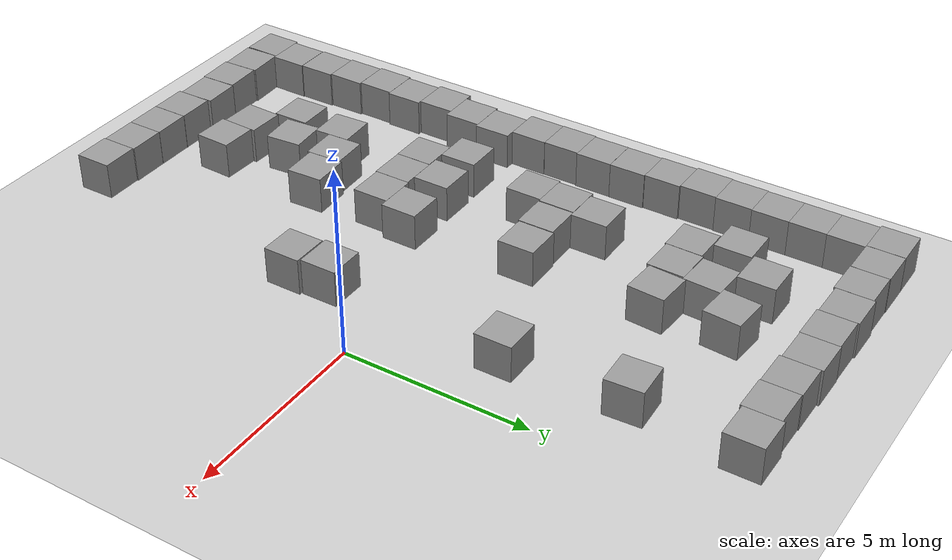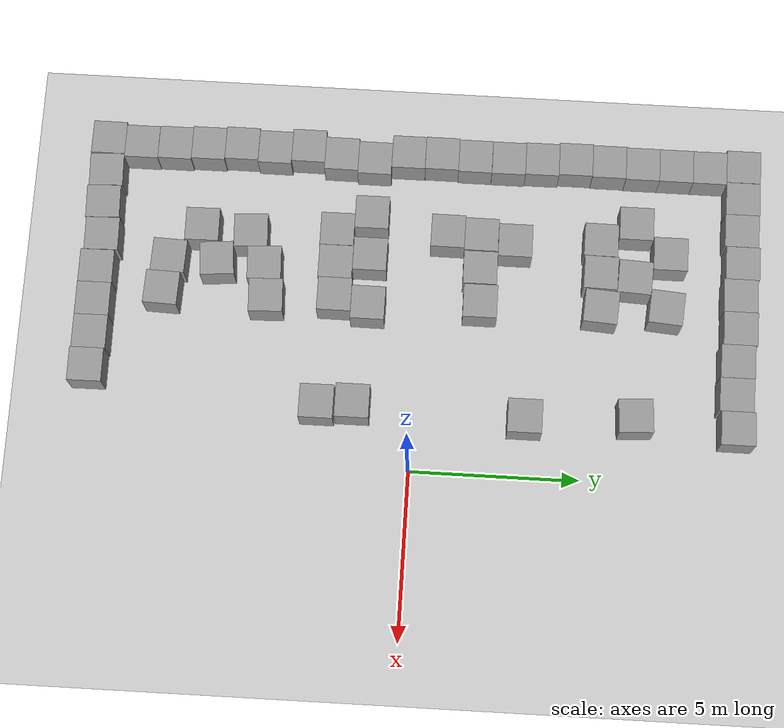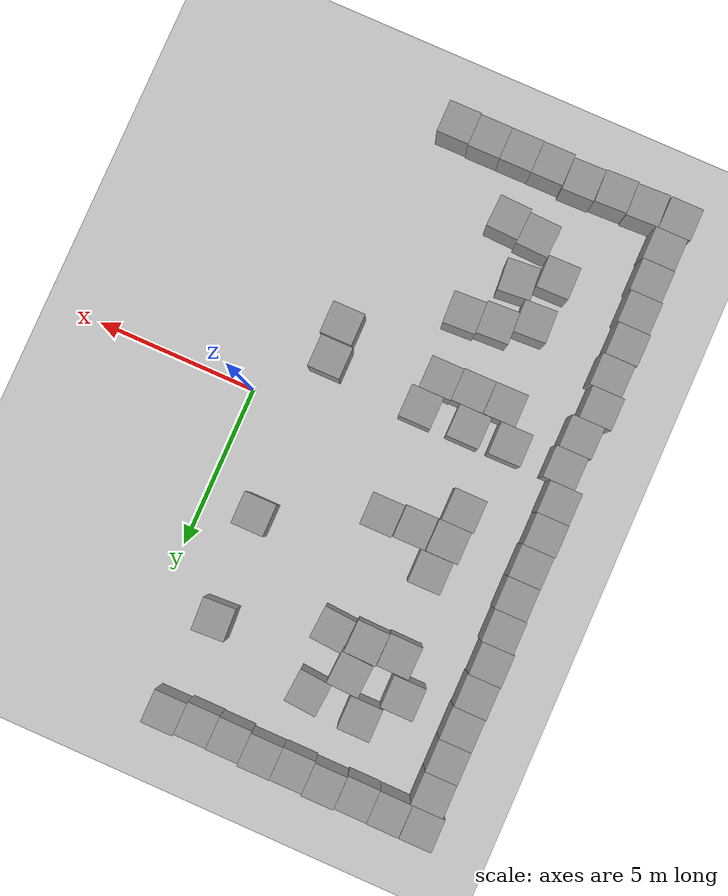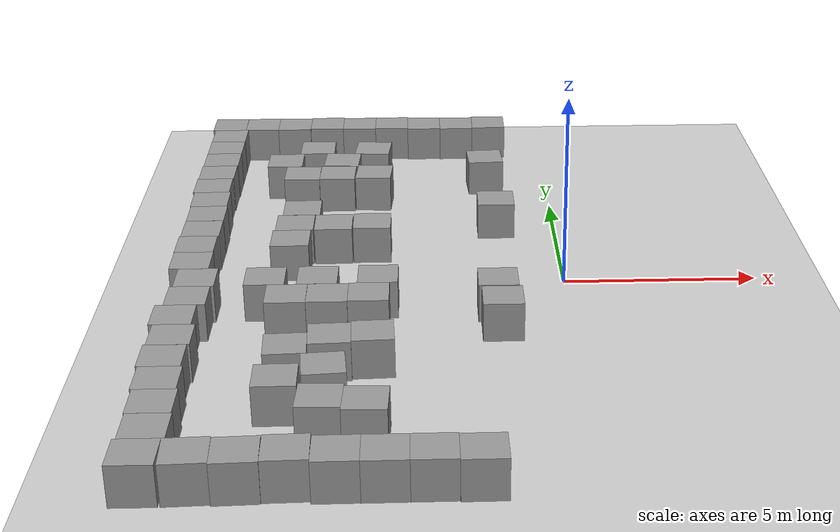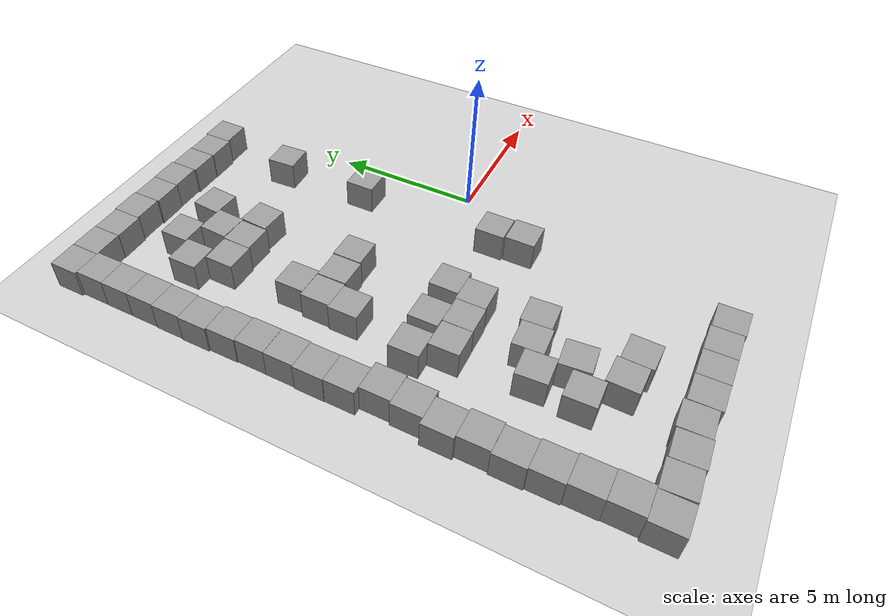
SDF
<sdf version="1.7">
 <world name="default">
  <model name="ground_plane">
   <static>1</static>
   <link name="link">
    <collision name="collision">
     <geometry><plane><normal>0 0 1</normal><size>100 100</size></plane></geometry>
     <surface>
      <contact><collide_bitmask>65535</collide_bitmask></contact>
      <friction><ode><mu>100</mu><mu2>50</mu2></ode></friction>
     </surface>
    </collision>
    <visual name="visual">
     <cast_shadows>0</cast_shadows>
     <geometry><plane><normal>0 0 1</normal><size>100 100</size></plane></geometry>
     <material>
      <script><uri>file://media/materials/scripts/gazebo.material</uri><name>Gazebo/Grey</name></script>
     </material>
    </visual>
   </link>
  </model>
  <model name="unit_box">
   <pose>-9.50922 1.49297 0.499995 0 -1e-05 -0.001719</pose>
   <link name="link">
    <inertial>
     <mass>1</mass>
     <inertia>
      <ixx>0.166667</ixx>
      <ixy>0</ixy>
      <ixz>0</ixz>
      <iyy>0.166667</iyy>
      <iyz>0</iyz>
      <izz>0.166667</izz>
     </inertia>
    </inertial>
    <collision name="collision"><geometry><box><size>1 1 1</size></box></geometry></collision>
    <visual name="visual">
     <geometry><box><size>1 1 1</size></box></geometry>
     <material>
      <script><name>Gazebo/Grey</name><uri>file://media/materials/scripts/gazebo.material</uri></script>
     </material>
    </visual>
   </link>
  </model>
  <model name="unit_box_0">
   <pose>-9.50449 2.49462 0.499995 0 -1e-05 0.001596</pose>
   <link name="link">
    <inertial>
     <mass>1</mass>
     <inertia>
      <ixx>0.166667</ixx>
      <ixy>0</ixy>
      <ixz>0</ixz>
      <iyy>0.166667</iyy>
      <iyz>0</iyz>
      <izz>0.166667</izz>
     </inertia>
    </inertial>
    <collision name="collision"><geometry><box><size>1 1 1</size></box></geometry></collision>
    <visual name="visual">
     <geometry><box><size>1 1 1</size></box></geometry>
     <material>
      <script><name>Gazebo/Grey</name><uri>file://media/materials/scripts/gazebo.material</uri></script>
     </material>
    </visual>
   </link>
  </model>
  <model name="unit_box_1">
   <pose>-9.53013 3.49459 0.499995 0 1e-05 0.001611</pose>
   <link name="link">
    <inertial>
     <mass>1</mass>
     <inertia>
      <ixx>0.166667</ixx>
      <ixy>0</ixy>
      <ixz>0</ixz>
      <iyy>0.166667</iyy>
      <iyz>0</iyz>
      <izz>0.166667</izz>
     </inertia>
    </inertial>
    <collision name="collision"><geometry><box><size>1 1 1</size></box></geometry></collision>
    <visual name="visual">
     <geometry><box><size>1 1 1</size></box></geometry>
     <material>
      <script><name>Gazebo/Grey</name><uri>file://media/materials/scripts/gazebo.material</uri></script>
     </material>
    </visual>
   </link>
  </model>
  <model name="unit_box_2">
   <pose>-9.57917 4.49452 0.499995 0 1e-05 0.001623</pose>
   <link name="link">
    <inertial>
     <mass>1</mass>
     <inertia>
      <ixx>0.166667</ixx>
      <ixy>0</ixy>
      <ixz>0</ixz>
      <iyy>0.166667</iyy>
      <iyz>0</iyz>
      <izz>0.166667</izz>
     </inertia>
    </inertial>
    <collision name="collision"><geometry><box><size>1 1 1</size></box></geometry></collision>
    <visual name="visual">
     <geometry><box><size>1 1 1</size></box></geometry>
     <material>
      <script><name>Gazebo/Grey</name><uri>file://media/materials/scripts/gazebo.material</uri></script>
     </material>
    </visual>
   </link>
  </model>
  <model name="unit_box_3">
   <pose>-9.55846 5.49458 0.499995 -1e-05 -0 0.001623</pose>
   <link name="link">
    <inertial>
     <mass>1</mass>
     <inertia>
      <ixx>0.166667</ixx>
      <ixy>0</ixy>
      <ixz>0</ixz>
      <iyy>0.166667</iyy>
      <iyz>0</iyz>
      <izz>0.166667</izz>
     </inertia>
    </inertial>
    <collision name="collision"><geometry><box><size>1 1 1</size></box></geometry></collision>
    <visual name="visual">
     <geometry><box><size>1 1 1</size></box></geometry>
     <material>
      <script><name>Gazebo/Grey</name><uri>file://media/materials/scripts/gazebo.material</uri></script>
     </material>
    </visual>
   </link>
  </model>
  <model name="unit_box_4">
   <pose>-9.54077 6.4946 0.499995 1e-05 0 0.001625</pose>
   <link name="link">
    <inertial>
     <mass>1</mass>
     <inertia>
      <ixx>0.166667</ixx>
      <ixy>0</ixy>
      <ixz>0</ixz>
      <iyy>0.166667</iyy>
      <iyz>0</iyz>
      <izz>0.166667</izz>
     </inertia>
    </inertial>
    <collision name="collision"><geometry><box><size>1 1 1</size></box></geometry></collision>
    <visual name="visual">
     <geometry><box><size>1 1 1</size></box></geometry>
     <material>
      <script><name>Gazebo/Grey</name><uri>file://media/materials/scripts/gazebo.material</uri></script>
     </material>
    </visual>
   </link>
  </model>
  <model name="unit_box_5">
   <pose>-9.54003 7.49461 0.499995 1e-05 0 0.001625</pose>
   <link name="link">
    <inertial>
     <mass>1</mass>
     <inertia>
      <ixx>0.166667</ixx>
      <ixy>0</ixy>
      <ixz>0</ixz>
      <iyy>0.166667</iyy>
      <iyz>0</iyz>
      <izz>0.166667</izz>
     </inertia>
    </inertial>
    <collision name="collision"><geometry><box><size>1 1 1</size></box></geometry></collision>
    <visual name="visual">
     <geometry><box><size>1 1 1</size></box></geometry>
     <material>
      <script><name>Gazebo/Grey</name><uri>file://media/materials/scripts/gazebo.material</uri></script>
     </material>
    </visual>
   </link>
  </model>
  <model name="unit_box_6">
   <pose>-9.53697 8.49462 0.499995 1e-05 0 0.001625</pose>
   <link name="link">
    <inertial>
     <mass>1</mass>
     <inertia>
      <ixx>0.166667</ixx>
      <ixy>0</ixy>
      <ixz>0</ixz>
      <iyy>0.166667</iyy>
      <iyz>0</iyz>
      <izz>0.166667</izz>
     </inertia>
    </inertial>
    <collision name="collision"><geometry><box><size>1 1 1</size></box></geometry></collision>
    <visual name="visual">
     <geometry><box><size>1 1 1</size></box></geometry>
     <material>
      <script><name>Gazebo/Grey</name><uri>file://media/materials/scripts/gazebo.material</uri></script>
     </material>
    </visual>
   </link>
  </model>
  <model name="unit_box_7">
   <pose>-9.61342 9.4945 0.499995 1e-05 0 0.001626</pose>
   <link name="link">
    <inertial>
     <mass>1</mass>
     <inertia>
      <ixx>0.166667</ixx>
      <ixy>0</ixy>
      <ixz>0</ixz>
      <iyy>0.166667</iyy>
      <iyz>0</iyz>
      <izz>0.166667</izz>
     </inertia>
    </inertial>
    <collision name="collision"><geometry><box><size>1 1 1</size></box></geometry></collision>
    <visual name="visual">
     <geometry><box><size>1 1 1</size></box></geometry>
     <material>
      <script><name>Gazebo/Grey</name><uri>file://media/materials/scripts/gazebo.material</uri></script>
     </material>
    </visual>
   </link>
  </model>
  <model name="unit_box_8">
   <pose>-8.61032 9.49388 0.499995 -0 1e-05 -0.003673</pose>
   <link name="link">
    <inertial>
     <mass>1</mass>
     <inertia>
      <ixx>0.166667</ixx>
      <ixy>0</ixy>
      <ixz>0</ixz>
      <iyy>0.166667</iyy>
      <iyz>0</iyz>
      <izz>0.166667</izz>
     </inertia>
    </inertial>
    <collision name="collision"><geometry><box><size>1 1 1</size></box></geometry></collision>
    <visual name="visual">
     <geometry><box><size>1 1 1</size></box></geometry>
     <material>
      <script><name>Gazebo/Grey</name><uri>file://media/materials/scripts/gazebo.material</uri></script>
     </material>
    </visual>
   </link>
  </model>
  <model name="unit_box_9">
   <pose>-7.61018 9.47879 0.499995 0 1e-05 -0.003293</pose>
   <link name="link">
    <inertial>
     <mass>1</mass>
     <inertia>
      <ixx>0.166667</ixx>
      <ixy>0</ixy>
      <ixz>0</ixz>
      <iyy>0.166667</iyy>
      <iyz>0</iyz>
      <izz>0.166667</izz>
     </inertia>
    </inertial>
    <collision name="collision"><geometry><box><size>1 1 1</size></box></geometry></collision>
    <visual name="visual">
     <geometry><box><size>1 1 1</size></box></geometry>
     <material>
      <script><name>Gazebo/Grey</name><uri>file://media/materials/scripts/gazebo.material</uri></script>
     </material>
    </visual>
   </link>
  </model>
  <model name="unit_box_10">
   <pose>-6.60926 9.52215 0.499995 1e-05 -0 -0.001603</pose>
   <link name="link">
    <inertial>
     <mass>1</mass>
     <inertia>
      <ixx>0.166667</ixx>
      <ixy>0</ixy>
      <ixz>0</ixz>
      <iyy>0.166667</iyy>
      <iyz>0</iyz>
      <izz>0.166667</izz>
     </inertia>
    </inertial>
    <collision name="collision"><geometry><box><size>1 1 1</size></box></geometry></collision>
    <visual name="visual">
     <geometry><box><size>1 1 1</size></box></geometry>
     <material>
      <script><name>Gazebo/Grey</name><uri>file://media/materials/scripts/gazebo.material</uri></script>
     </material>
    </visual>
   </link>
  </model>
  <model name="unit_box_11">
   <pose>-5.60932 9.47912 0.499995 1e-05 -0 -0.001602</pose>
   <link name="link">
    <inertial>
     <mass>1</mass>
     <inertia>
      <ixx>0.166667</ixx>
      <ixy>0</ixy>
      <ixz>0</ixz>
      <iyy>0.166667</iyy>
      <iyz>0</iyz>
      <izz>0.166667</izz>
     </inertia>
    </inertial>
    <collision name="collision"><geometry><box><size>1 1 1</size></box></geometry></collision>
    <visual name="visual">
     <geometry><box><size>1 1 1</size></box></geometry>
     <material>
      <script><name>Gazebo/Grey</name><uri>file://media/materials/scripts/gazebo.material</uri></script>
     </material>
    </visual>
   </link>
  </model>
  <model name="unit_box_12">
   <pose>-4.60924 9.49284 0.499995 -1e-05 -0 -0.001499</pose>
   <link name="link">
    <inertial>
     <mass>1</mass>
     <inertia>
      <ixx>0.166667</ixx>
      <ixy>0</ixy>
      <ixz>0</ixz>
      <iyy>0.166667</iyy>
      <iyz>0</iyz>
      <izz>0.166667</izz>
     </inertia>
    </inertial>
    <collision name="collision"><geometry><box><size>1 1 1</size></box></geometry></collision>
    <visual name="visual">
     <geometry><box><size>1 1 1</size></box></geometry>
     <material>
      <script><name>Gazebo/Grey</name><uri>file://media/materials/scripts/gazebo.material</uri></script>
     </material>
    </visual>
   </link>
  </model>
  <model name="unit_box_13">
   <pose>-3.60932 9.43189 0.499995 1e-05 0 -0.001485</pose>
   <link name="link">
    <inertial>
     <mass>1</mass>
     <inertia>
      <ixx>0.166667</ixx>
      <ixy>0</ixy>
      <ixz>0</ixz>
      <iyy>0.166667</iyy>
      <iyz>0</iyz>
      <izz>0.166667</izz>
     </inertia>
    </inertial>
    <collision name="collision"><geometry><box><size>1 1 1</size></box></geometry></collision>
    <visual name="visual">
     <geometry><box><size>1 1 1</size></box></geometry>
     <material>
      <script><name>Gazebo/Grey</name><uri>file://media/materials/scripts/gazebo.material</uri></script>
     </material>
    </visual>
   </link>
  </model>
  <model name="unit_box_14">
   <pose>-2.60928 9.41153 0.499995 0 -9e-06 -0.001348</pose>
   <link name="link">
    <inertial>
     <mass>1</mass>
     <inertia>
      <ixx>0.166667</ixx>
      <ixy>0</ixy>
      <ixz>0</ixz>
      <iyy>0.166667</iyy>
      <iyz>0</iyz>
      <izz>0.166667</izz>
     </inertia>
    </inertial>
    <collision name="collision"><geometry><box><size>1 1 1</size></box></geometry></collision>
    <visual name="visual">
     <geometry><box><size>1 1 1</size></box></geometry>
     <material>
      <script><name>Gazebo/Grey</name><uri>file://media/materials/scripts/gazebo.material</uri></script>
     </material>
    </visual>
   </link>
  </model>
  <model name="unit_box_15">
   <pose>-1.60915 9.46987 0.499995 -0 9e-06 -0.001269</pose>
   <link name="link">
    <inertial>
     <mass>1</mass>
     <inertia>
      <ixx>0.166667</ixx>
      <ixy>0</ixy>
      <ixz>0</ixz>
      <iyy>0.166667</iyy>
      <iyz>0</iyz>
      <izz>0.166667</izz>
     </inertia>
    </inertial>
    <collision name="collision"><geometry><box><size>1 1 1</size></box></geometry></collision>
    <visual name="visual">
     <geometry><box><size>1 1 1</size></box></geometry>
     <material>
      <script><name>Gazebo/Grey</name><uri>file://media/materials/scripts/gazebo.material</uri></script>
     </material>
    </visual>
   </link>
  </model>
  <model name="unit_box_57">
   <pose>-2.45366 -9.53592 0.5 0 -0 0.006195</pose>
   <link name="link">
    <inertial>
     <mass>1</mass>
     <inertia>
      <ixx>0.166667</ixx>
      <ixy>0</ixy>
      <ixz>0</ixz>
      <iyy>0.166667</iyy>
      <iyz>0</iyz>
      <izz>0.166667</izz>
     </inertia>
    </inertial>
    <collision name="collision"><geometry><box><size>1 1 1</size></box></geometry></collision>
    <visual name="visual">
     <geometry><box><size>1 1 1</size></box></geometry>
     <material>
      <script><name>Gazebo/Grey</name><uri>file://media/materials/scripts/gazebo.material</uri></script>
     </material>
    </visual>
   </link>
  </model>
  <model name="unit_box_58">
   <pose>-3.45386 -9.50883 0.499995 -1e-05 -0 0.006215</pose>
   <link name="link">
    <inertial>
     <mass>1</mass>
     <inertia>
      <ixx>0.166667</ixx>
      <ixy>0</ixy>
      <ixz>0</ixz>
      <iyy>0.166667</iyy>
      <iyz>0</iyz>
      <izz>0.166667</izz>
     </inertia>
    </inertial>
    <collision name="collision"><geometry><box><size>1 1 1</size></box></geometry></collision>
    <visual name="visual">
     <geometry><box><size>1 1 1</size></box></geometry>
     <material>
      <script><name>Gazebo/Grey</name><uri>file://media/materials/scripts/gazebo.material</uri></script>
     </material>
    </visual>
   </link>
  </model>
  <model name="unit_box_59">
   <pose>-4.45388 -9.51184 0.499731 1e-05 -0 0.006232</pose>
   <link name="link">
    <inertial>
     <mass>1</mass>
     <inertia>
      <ixx>0.166667</ixx>
      <ixy>0</ixy>
      <ixz>0</ixz>
      <iyy>0.166667</iyy>
      <iyz>0</iyz>
      <izz>0.166667</izz>
     </inertia>
    </inertial>
    <collision name="collision"><geometry><box><size>1 1 1</size></box></geometry></collision>
    <visual name="visual">
     <geometry><box><size>1 1 1</size></box></geometry>
     <material>
      <script><name>Gazebo/Grey</name><uri>file://media/materials/scripts/gazebo.material</uri></script>
     </material>
    </visual>
   </link>
  </model>
  <model name="unit_box_60">
   <pose>-5.454 -9.51175 0.5 0 -0 0.006419</pose>
   <link name="link">
    <inertial>
     <mass>1</mass>
     <inertia>
      <ixx>0.166667</ixx>
      <ixy>0</ixy>
      <ixz>0</ixz>
      <iyy>0.166667</iyy>
      <iyz>0</iyz>
      <izz>0.166667</izz>
     </inertia>
    </inertial>
    <collision name="collision"><geometry><box><size>1 1 1</size></box></geometry></collision>
    <visual name="visual">
     <geometry><box><size>1 1 1</size></box></geometry>
     <material>
      <script><name>Gazebo/Grey</name><uri>file://media/materials/scripts/gazebo.material</uri></script>
     </material>
    </visual>
   </link>
  </model>
  <model name="unit_box_61">
   <pose>-6.46221 -9.44083 0.499726 0 -0 0.022004</pose>
   <link name="link">
    <inertial>
     <mass>1</mass>
     <inertia>
      <ixx>0.166667</ixx>
      <ixy>0</ixy>
      <ixz>0</ixz>
      <iyy>0.166667</iyy>
      <iyz>0</iyz>
      <izz>0.166667</izz>
     </inertia>
    </inertial>
    <collision name="collision"><geometry><box><size>1 1 1</size></box></geometry></collision>
    <visual name="visual">
     <geometry><box><size>1 1 1</size></box></geometry>
     <material>
      <script><name>Gazebo/Grey</name><uri>file://media/materials/scripts/gazebo.material</uri></script>
     </material>
    </visual>
   </link>
  </model>
  <model name="unit_box_62">
   <pose>-7.4684 -9.49715 0.5 0 -0 0.037288</pose>
   <link name="link">
    <inertial>
     <mass>1</mass>
     <inertia>
      <ixx>0.166667</ixx>
      <ixy>0</ixy>
      <ixz>0</ixz>
      <iyy>0.166667</iyy>
      <iyz>0</iyz>
      <izz>0.166667</izz>
     </inertia>
    </inertial>
    <collision name="collision"><geometry><box><size>1 1 1</size></box></geometry></collision>
    <visual name="visual">
     <geometry><box><size>1 1 1</size></box></geometry>
     <material>
      <script><name>Gazebo/Grey</name><uri>file://media/materials/scripts/gazebo.material</uri></script>
     </material>
    </visual>
   </link>
  </model>
  <model name="unit_box_63">
   <pose>-8.47102 -9.49575 0.5 0 -0 0.041026</pose>
   <link name="link">
    <inertial>
     <mass>1</mass>
     <inertia>
      <ixx>0.166667</ixx>
      <ixy>0</ixy>
      <ixz>0</ixz>
      <iyy>0.166667</iyy>
      <iyz>0</iyz>
      <izz>0.166667</izz>
     </inertia>
    </inertial>
    <collision name="collision"><geometry><box><size>1 1 1</size></box></geometry></collision>
    <visual name="visual">
     <geometry><box><size>1 1 1</size></box></geometry>
     <material>
      <script><name>Gazebo/Grey</name><uri>file://media/materials/scripts/gazebo.material</uri></script>
     </material>
    </visual>
   </link>
  </model>
  <model name="unit_box_64">
   <pose>-9.49377 -9.51115 0.499995 -1e-05 -0 -0.003975</pose>
   <link name="link">
    <inertial>
     <mass>1</mass>
     <inertia>
      <ixx>0.166667</ixx>
      <ixy>0</ixy>
      <ixz>0</ixz>
      <iyy>0.166667</iyy>
      <iyz>0</iyz>
      <izz>0.166667</izz>
     </inertia>
    </inertial>
    <collision name="collision"><geometry><box><size>1 1 1</size></box></geometry></collision>
    <visual name="visual">
     <geometry><box><size>1 1 1</size></box></geometry>
     <material>
      <script><name>Gazebo/Grey</name><uri>file://media/materials/scripts/gazebo.material</uri></script>
     </material>
    </visual>
   </link>
  </model>
  <model name="unit_box_65">
   <pose>-9.41757 -8.51136 0.499995 -0 1e-05 -0.003863</pose>
   <link name="link">
    <inertial>
     <mass>1</mass>
     <inertia>
      <ixx>0.166667</ixx>
      <ixy>0</ixy>
      <ixz>0</ixz>
      <iyy>0.166667</iyy>
      <iyz>0</iyz>
      <izz>0.166667</izz>
     </inertia>
    </inertial>
    <collision name="collision"><geometry><box><size>1 1 1</size></box></geometry></collision>
    <visual name="visual">
     <geometry><box><size>1 1 1</size></box></geometry>
     <material>
      <script><name>Gazebo/Grey</name><uri>file://media/materials/scripts/gazebo.material</uri></script>
     </material>
    </visual>
   </link>
  </model>
  <model name="unit_box_66">
   <pose>-9.43649 -7.51009 0.499995 -1e-05 0 -0.00381</pose>
   <link name="link">
    <inertial>
     <mass>1</mass>
     <inertia>
      <ixx>0.166667</ixx>
      <ixy>0</ixy>
      <ixz>0</ixz>
      <iyy>0.166667</iyy>
      <iyz>0</iyz>
      <izz>0.166667</izz>
     </inertia>
    </inertial>
    <collision name="collision"><geometry><box><size>1 1 1</size></box></geometry></collision>
    <visual name="visual">
     <geometry><box><size>1 1 1</size></box></geometry>
     <material>
      <script><name>Gazebo/Grey</name><uri>file://media/materials/scripts/gazebo.material</uri></script>
     </material>
    </visual>
   </link>
  </model>
  <model name="unit_box_67">
   <pose>-9.4794 -6.50984 0.499995 -1e-05 -0 -0.003855</pose>
   <link name="link">
    <inertial>
     <mass>1</mass>
     <inertia>
      <ixx>0.166667</ixx>
      <ixy>0</ixy>
      <ixz>0</ixz>
      <iyy>0.166667</iyy>
      <iyz>0</iyz>
      <izz>0.166667</izz>
     </inertia>
    </inertial>
    <collision name="collision"><geometry><box><size>1 1 1</size></box></geometry></collision>
    <visual name="visual">
     <geometry><box><size>1 1 1</size></box></geometry>
     <material>
      <script><name>Gazebo/Grey</name><uri>file://media/materials/scripts/gazebo.material</uri></script>
     </material>
    </visual>
   </link>
  </model>
  <model name="unit_box_68">
   <pose>-9.52487 -5.50957 0.499995 0 1e-05 -0.003743</pose>
   <link name="link">
    <inertial>
     <mass>1</mass>
     <inertia>
      <ixx>0.166667</ixx>
      <ixy>0</ixy>
      <ixz>0</ixz>
      <iyy>0.166667</iyy>
      <iyz>0</iyz>
      <izz>0.166667</izz>
     </inertia>
    </inertial>
    <collision name="collision"><geometry><box><size>1 1 1</size></box></geometry></collision>
    <visual name="visual">
     <geometry><box><size>1 1 1</size></box></geometry>
     <material>
      <script><name>Gazebo/Grey</name><uri>file://media/materials/scripts/gazebo.material</uri></script>
     </material>
    </visual>
   </link>
  </model>
  <model name="unit_box_69">
   <pose>-9.46591 -4.50814 0.499995 -1e-05 -0 -0.003863</pose>
   <link name="link">
    <inertial>
     <mass>1</mass>
     <inertia>
      <ixx>0.166667</ixx>
      <ixy>0</ixy>
      <ixz>0</ixz>
      <iyy>0.166667</iyy>
      <iyz>0</iyz>
      <izz>0.166667</izz>
     </inertia>
    </inertial>
    <collision name="collision"><geometry><box><size>1 1 1</size></box></geometry></collision>
    <visual name="visual">
     <geometry><box><size>1 1 1</size></box></geometry>
     <material>
      <script><name>Gazebo/Grey</name><uri>file://media/materials/scripts/gazebo.material</uri></script>
     </material>
    </visual>
   </link>
  </model>
  <model name="unit_box_70">
   <pose>-9.56511 -3.50768 0.499995 0 1e-05 -0.00385</pose>
   <link name="link">
    <inertial>
     <mass>1</mass>
     <inertia>
      <ixx>0.166667</ixx>
      <ixy>0</ixy>
      <ixz>0</ixz>
      <iyy>0.166667</iyy>
      <iyz>0</iyz>
      <izz>0.166667</izz>
     </inertia>
    </inertial>
    <collision name="collision"><geometry><box><size>1 1 1</size></box></geometry></collision>
    <visual name="visual">
     <geometry><box><size>1 1 1</size></box></geometry>
     <material>
      <script><name>Gazebo/Grey</name><uri>file://media/materials/scripts/gazebo.material</uri></script>
     </material>
    </visual>
   </link>
  </model>
  <model name="unit_box_71">
   <pose>-9.36733 -2.50835 0.499995 0 -1e-05 -0.003998</pose>
   <link name="link">
    <inertial>
     <mass>1</mass>
     <inertia>
      <ixx>0.166667</ixx>
      <ixy>0</ixy>
      <ixz>0</ixz>
      <iyy>0.166667</iyy>
      <iyz>0</iyz>
      <izz>0.166667</izz>
     </inertia>
    </inertial>
    <collision name="collision"><geometry><box><size>1 1 1</size></box></geometry></collision>
    <visual name="visual">
     <geometry><box><size>1 1 1</size></box></geometry>
     <material>
      <script><name>Gazebo/Grey</name><uri>file://media/materials/scripts/gazebo.material</uri></script>
     </material>
    </visual>
   </link>
  </model>
  <model name="unit_box_72">
   <pose>-9.5418 0.493015 0.499995 0 1e-05 -0.00172</pose>
   <link name="link">
    <inertial>
     <mass>1</mass>
     <inertia>
      <ixx>0.166667</ixx>
      <ixy>0</ixy>
      <ixz>0</ixz>
      <iyy>0.166667</iyy>
      <iyz>0</iyz>
      <izz>0.166667</izz>
     </inertia>
    </inertial>
    <collision name="collision"><geometry><box><size>1 1 1</size></box></geometry></collision>
    <visual name="visual">
     <geometry><box><size>1 1 1</size></box></geometry>
     <material>
      <script><name>Gazebo/Grey</name><uri>file://media/materials/scripts/gazebo.material</uri></script>
     </material>
    </visual>
   </link>
  </model>
  <model name="unit_box_73">
   <pose>-9.5311 -0.507073 0.499995 0 1e-05 -0.001772</pose>
   <link name="link">
    <inertial>
     <mass>1</mass>
     <inertia>
      <ixx>0.166667</ixx>
      <ixy>0</ixy>
      <ixz>0</ixz>
      <iyy>0.166667</iyy>
      <iyz>0</iyz>
      <izz>0.166667</izz>
     </inertia>
    </inertial>
    <collision name="collision"><geometry><box><size>1 1 1</size></box></geometry></collision>
    <visual name="visual">
     <geometry><box><size>1 1 1</size></box></geometry>
     <material>
      <script><name>Gazebo/Grey</name><uri>file://media/materials/scripts/gazebo.material</uri></script>
     </material>
    </visual>
   </link>
  </model>
  <model name="unit_box_74">
   <pose>-9.2872 -1.50839 0.499995 0 -1e-05 -0.003526</pose>
   <link name="link">
    <inertial>
     <mass>1</mass>
     <inertia>
      <ixx>0.166667</ixx>
      <ixy>0</ixy>
      <ixz>0</ixz>
      <iyy>0.166667</iyy>
      <iyz>0</iyz>
      <izz>0.166667</izz>
     </inertia>
    </inertial>
    <collision name="collision"><geometry><box><size>1 1 1</size></box></geometry></collision>
    <visual name="visual">
     <geometry><box><size>1 1 1</size></box></geometry>
     <material>
      <script><name>Gazebo/Grey</name><uri>file://media/materials/scripts/gazebo.material</uri></script>
     </material>
    </visual>
   </link>
  </model>
  <model name="unit_box_76">
   <pose>-4.90808 -7.53735 0.499995 -0 -1e-05 -0.036618</pose>
   <link name="link">
    <inertial>
     <mass>1</mass>
     <inertia>
      <ixx>0.166667</ixx>
      <ixy>0</ixy>
      <ixz>0</ixz>
      <iyy>0.166667</iyy>
      <iyz>0</iyz>
      <izz>0.166667</izz>
     </inertia>
    </inertial>
    <collision name="collision"><geometry><box><size>1 1 1</size></box></geometry></collision>
    <visual name="visual">
     <geometry><box><size>1 1 1</size></box></geometry>
     <material>
      <script><name>Gazebo/Grey</name><uri>file://media/materials/scripts/gazebo.material</uri></script>
     </material>
    </visual>
   </link>
  </model>
  <model name="unit_box_77">
   <pose>-5.90394 -7.40503 0.499995 0 -1e-05 -0.036559</pose>
   <link name="link">
    <inertial>
     <mass>1</mass>
     <inertia>
      <ixx>0.166667</ixx>
      <ixy>0</ixy>
      <ixz>0</ixz>
      <iyy>0.166667</iyy>
      <iyz>0</iyz>
      <izz>0.166667</izz>
     </inertia>
    </inertial>
    <collision name="collision"><geometry><box><size>1 1 1</size></box></geometry></collision>
    <visual name="visual">
     <geometry><box><size>1 1 1</size></box></geometry>
     <material>
      <script><name>Gazebo/Grey</name><uri>file://media/materials/scripts/gazebo.material</uri></script>
     </material>
    </visual>
   </link>
  </model>
  <model name="unit_box_78">
   <pose>-6.92399 -6.49447 0.499995 0 1e-05 0.014256</pose>
   <link name="link">
    <inertial>
     <mass>1</mass>
     <inertia>
      <ixx>0.166667</ixx>
      <ixy>0</ixy>
      <ixz>0</ixz>
      <iyy>0.166667</iyy>
      <iyz>0</iyz>
      <izz>0.166667</izz>
     </inertia>
    </inertial>
    <collision name="collision"><geometry><box><size>1 1 1</size></box></geometry></collision>
    <visual name="visual">
     <geometry><box><size>1 1 1</size></box></geometry>
     <material>
      <script><name>Gazebo/Grey</name><uri>file://media/materials/scripts/gazebo.material</uri></script>
     </material>
    </visual>
   </link>
  </model>
  <model name="unit_box_79">
   <pose>-5.89517 -5.98697 0.499995 -1e-05 -0 0.083389</pose>
   <link name="link">
    <inertial>
     <mass>1</mass>
     <inertia>
      <ixx>0.166667</ixx>
      <ixy>0</ixy>
      <ixz>0</ixz>
      <iyy>0.166667</iyy>
      <iyz>0</iyz>
      <izz>0.166667</izz>
     </inertia>
    </inertial>
    <collision name="collision"><geometry><box><size>1 1 1</size></box></geometry></collision>
    <visual name="visual">
     <geometry><box><size>1 1 1</size></box></geometry>
     <material>
      <script><name>Gazebo/Grey</name><uri>file://media/materials/scripts/gazebo.material</uri></script>
     </material>
    </visual>
   </link>
  </model>
  <model name="unit_box_80">
   <pose>-6.81882 -5.04396 0.499995 0 1e-05 0.049686</pose>
   <link name="link">
    <inertial>
     <mass>1</mass>
     <inertia>
      <ixx>0.166667</ixx>
      <ixy>0</ixy>
      <ixz>0</ixz>
      <iyy>0.166667</iyy>
      <iyz>0</iyz>
      <izz>0.166667</izz>
     </inertia>
    </inertial>
    <collision name="collision"><geometry><box><size>1 1 1</size></box></geometry></collision>
    <visual name="visual">
     <geometry><box><size>1 1 1</size></box></geometry>
     <material>
      <script><name>Gazebo/Grey</name><uri>file://media/materials/scripts/gazebo.material</uri></script>
     </material>
    </visual>
   </link>
  </model>
  <model name="unit_box_81">
   <pose>-5.83791 -4.57615 0.499995 0 -1e-05 0.043891</pose>
   <link name="link">
    <inertial>
     <mass>1</mass>
     <inertia>
      <ixx>0.166667</ixx>
      <ixy>0</ixy>
      <ixz>0</ixz>
      <iyy>0.166667</iyy>
      <iyz>0</iyz>
      <izz>0.166667</izz>
     </inertia>
    </inertial>
    <collision name="collision"><geometry><box><size>1 1 1</size></box></geometry></collision>
    <visual name="visual">
     <geometry><box><size>1 1 1</size></box></geometry>
     <material>
      <script><name>Gazebo/Grey</name><uri>file://media/materials/scripts/gazebo.material</uri></script>
     </material>
    </visual>
   </link>
  </model>
  <model name="unit_box_75">
   <pose>-4.84193 -4.46063 0.499995 0 1e-05 0.043849</pose>
   <link name="link">
    <inertial>
     <mass>1</mass>
     <inertia>
      <ixx>0.166667</ixx>
      <ixy>0</ixy>
      <ixz>0</ixz>
      <iyy>0.166667</iyy>
      <iyz>0</iyz>
      <izz>0.166667</izz>
     </inertia>
    </inertial>
    <collision name="collision"><geometry><box><size>1 1 1</size></box></geometry></collision>
    <visual name="visual">
     <geometry><box><size>1 1 1</size></box></geometry>
     <material>
      <script><name>Gazebo/Grey</name><uri>file://media/materials/scripts/gazebo.material</uri></script>
     </material>
    </visual>
   </link>
  </model>
  <model name="unit_box_82">
   <pose>-6.9947 -2.48695 0.499995 -0 -1e-05 0.00469</pose>
   <link name="link">
    <inertial>
     <mass>1</mass>
     <inertia>
      <ixx>0.166667</ixx>
      <ixy>0</ixy>
      <ixz>0</ixz>
      <iyy>0.166667</iyy>
      <iyz>0</iyz>
      <izz>0.166667</izz>
     </inertia>
    </inertial>
    <collision name="collision"><geometry><box><size>1 1 1</size></box></geometry></collision>
    <visual name="visual">
     <geometry><box><size>1 1 1</size></box></geometry>
     <material>
      <script><name>Gazebo/Grey</name><uri>file://media/materials/scripts/gazebo.material</uri></script>
     </material>
    </visual>
   </link>
  </model>
  <model name="unit_box_83">
   <pose>-5.99172 -2.47501 0.499995 -0 1e-05 -0.001344</pose>
   <link name="link">
    <inertial>
     <mass>1</mass>
     <inertia>
      <ixx>0.166667</ixx>
      <ixy>0</ixy>
      <ixz>0</ixz>
      <iyy>0.166667</iyy>
      <iyz>0</iyz>
      <izz>0.166667</izz>
     </inertia>
    </inertial>
    <collision name="collision"><geometry><box><size>1 1 1</size></box></geometry></collision>
    <visual name="visual">
     <geometry><box><size>1 1 1</size></box></geometry>
     <material>
      <script><name>Gazebo/Grey</name><uri>file://media/materials/scripts/gazebo.material</uri></script>
     </material>
    </visual>
   </link>
  </model>
  <model name="unit_box_84">
   <pose>-4.99151 -2.44766 0.499995 1e-05 -0 -0.001661</pose>
   <link name="link">
    <inertial>
     <mass>1</mass>
     <inertia>
      <ixx>0.166667</ixx>
      <ixy>0</ixy>
      <ixz>0</ixz>
      <iyy>0.166667</iyy>
      <iyz>0</iyz>
      <izz>0.166667</izz>
     </inertia>
    </inertial>
    <collision name="collision"><geometry><box><size>1 1 1</size></box></geometry></collision>
    <visual name="visual">
     <geometry><box><size>1 1 1</size></box></geometry>
     <material>
      <script><name>Gazebo/Grey</name><uri>file://media/materials/scripts/gazebo.material</uri></script>
     </material>
    </visual>
   </link>
  </model>
  <model name="unit_box_85">
   <pose>-4.78585 -1.44712 0.499995 1e-05 -0 -0.00462</pose>
   <link name="link">
    <inertial>
     <mass>1</mass>
     <inertia>
      <ixx>0.166667</ixx>
      <ixy>0</ixy>
      <ixz>0</ixz>
      <iyy>0.166667</iyy>
      <iyz>0</iyz>
      <izz>0.166667</izz>
     </inertia>
    </inertial>
    <collision name="collision"><geometry><box><size>1 1 1</size></box></geometry></collision>
    <visual name="visual">
     <geometry><box><size>1 1 1</size></box></geometry>
     <material>
      <script><name>Gazebo/Grey</name><uri>file://media/materials/scripts/gazebo.material</uri></script>
     </material>
    </visual>
   </link>
  </model>
  <model name="unit_box_86">
   <pose>-6.27764 -1.47303 0.499995 -0 1e-05 -0.004404</pose>
   <link name="link">
    <inertial>
     <mass>1</mass>
     <inertia>
      <ixx>0.166667</ixx>
      <ixy>0</ixy>
      <ixz>0</ixz>
      <iyy>0.166667</iyy>
      <iyz>0</iyz>
      <izz>0.166667</izz>
     </inertia>
    </inertial>
    <collision name="collision"><geometry><box><size>1 1 1</size></box></geometry></collision>
    <visual name="visual">
     <geometry><box><size>1 1 1</size></box></geometry>
     <material>
      <script><name>Gazebo/Grey</name><uri>file://media/materials/scripts/gazebo.material</uri></script>
     </material>
    </visual>
   </link>
  </model>
  <model name="unit_box_87">
   <pose>-7.5781 -1.48988 0.499995 -1e-05 0 0.007688</pose>
   <link name="link">
    <inertial>
     <mass>1</mass>
     <inertia>
      <ixx>0.166667</ixx>
      <ixy>0</ixy>
      <ixz>0</ixz>
      <iyy>0.166667</iyy>
      <iyz>0</iyz>
      <izz>0.166667</izz>
     </inertia>
    </inertial>
    <collision name="collision"><geometry><box><size>1 1 1</size></box></geometry></collision>
    <visual name="visual">
     <geometry><box><size>1 1 1</size></box></geometry>
     <material>
      <script><name>Gazebo/Grey</name><uri>file://media/materials/scripts/gazebo.material</uri></script>
     </material>
    </visual>
   </link>
  </model>
  <model name="unit_box_88">
   <pose>-7.12216 0.790295 0.499995 1e-05 -0 -0.003987</pose>
   <link name="link">
    <inertial>
     <mass>1</mass>
     <inertia>
      <ixx>0.166667</ixx>
      <ixy>0</ixy>
      <ixz>0</ixz>
      <iyy>0.166667</iyy>
      <iyz>0</iyz>
      <izz>0.166667</izz>
     </inertia>
    </inertial>
    <collision name="collision"><geometry><box><size>1 1 1</size></box></geometry></collision>
    <visual name="visual">
     <geometry><box><size>1 1 1</size></box></geometry>
     <material>
      <script><name>Gazebo/Grey</name><uri>file://media/materials/scripts/gazebo.material</uri></script>
     </material>
    </visual>
   </link>
  </model>
  <model name="unit_box_89">
   <pose>-7.06557 1.79019 0.499995 0 -1e-05 -0.004027</pose>
   <link name="link">
    <inertial>
     <mass>1</mass>
     <inertia>
      <ixx>0.166667</ixx>
      <ixy>0</ixy>
      <ixz>0</ixz>
      <iyy>0.166667</iyy>
      <iyz>0</iyz>
      <izz>0.166667</izz>
     </inertia>
    </inertial>
    <collision name="collision"><geometry><box><size>1 1 1</size></box></geometry></collision>
    <visual name="visual">
     <geometry><box><size>1 1 1</size></box></geometry>
     <material>
      <script><name>Gazebo/Grey</name><uri>file://media/materials/scripts/gazebo.material</uri></script>
     </material>
    </visual>
   </link>
  </model>
  <model name="unit_box_90">
   <pose>-6.93874 2.79408 0.499995 -1e-05 -0 0.001897</pose>
   <link name="link">
    <inertial>
     <mass>1</mass>
     <inertia>
      <ixx>0.166667</ixx>
      <ixy>0</ixy>
      <ixz>0</ixz>
      <iyy>0.166667</iyy>
      <iyz>0</iyz>
      <izz>0.166667</izz>
     </inertia>
    </inertial>
    <collision name="collision"><geometry><box><size>1 1 1</size></box></geometry></collision>
    <visual name="visual">
     <geometry><box><size>1 1 1</size></box></geometry>
     <material>
      <script><name>Gazebo/Grey</name><uri>file://media/materials/scripts/gazebo.material</uri></script>
     </material>
    </visual>
   </link>
  </model>
  <model name="unit_box_91">
   <pose>-6.04179 1.79631 0.499995 0 -1e-05 0.003388</pose>
   <link name="link">
    <inertial>
     <mass>1</mass>
     <inertia>
      <ixx>0.166667</ixx>
      <ixy>0</ixy>
      <ixz>0</ixz>
      <iyy>0.166667</iyy>
      <iyz>0</iyz>
      <izz>0.166667</izz>
     </inertia>
    </inertial>
    <collision name="collision"><geometry><box><size>1 1 1</size></box></geometry></collision>
    <visual name="visual">
     <geometry><box><size>1 1 1</size></box></geometry>
     <material>
      <script><name>Gazebo/Grey</name><uri>file://media/materials/scripts/gazebo.material</uri></script>
     </material>
    </visual>
   </link>
  </model>
  <model name="unit_box_92">
   <pose>-5.01936 1.84277 0.499995 0 1e-05 0</pose>
   <link name="link">
    <inertial>
     <mass>1</mass>
     <inertia>
      <ixx>0.166667</ixx>
      <ixy>0</ixy>
      <ixz>0</ixz>
      <iyy>0.166667</iyy>
      <iyz>0</iyz>
      <izz>0.166667</izz>
     </inertia>
    </inertial>
    <collision name="collision"><geometry><box><size>1 1 1</size></box></geometry></collision>
    <visual name="visual">
     <geometry><box><size>1 1 1</size></box></geometry>
     <material>
      <script><name>Gazebo/Grey</name><uri>file://media/materials/scripts/gazebo.material</uri></script>
     </material>
    </visual>
   </link>
  </model>
  <model name="unit_box_93">
   <pose>-7.09672 5.33465 0.499995 -1e-05 -0 -0.014377</pose>
   <link name="link">
    <inertial>
     <mass>1</mass>
     <inertia>
      <ixx>0.166667</ixx>
      <ixy>0</ixy>
      <ixz>0</ixz>
      <iyy>0.166667</iyy>
      <iyz>0</iyz>
      <izz>0.166667</izz>
     </inertia>
    </inertial>
    <collision name="collision"><geometry><box><size>1 1 1</size></box></geometry></collision>
    <visual name="visual">
     <geometry><box><size>1 1 1</size></box></geometry>
     <material>
      <script><name>Gazebo/Grey</name><uri>file://media/materials/scripts/gazebo.material</uri></script>
     </material>
    </visual>
   </link>
  </model>
  <model name="unit_box_94">
   <pose>-6.09158 5.35826 0.499995 0 1e-05 -0.023758</pose>
   <link name="link">
    <inertial>
     <mass>1</mass>
     <inertia>
      <ixx>0.166667</ixx>
      <ixy>0</ixy>
      <ixz>0</ixz>
      <iyy>0.166667</iyy>
      <iyz>0</iyz>
      <izz>0.166667</izz>
     </inertia>
    </inertial>
    <collision name="collision"><geometry><box><size>1 1 1</size></box></geometry></collision>
    <visual name="visual">
     <geometry><box><size>1 1 1</size></box></geometry>
     <material>
      <script><name>Gazebo/Grey</name><uri>file://media/materials/scripts/gazebo.material</uri></script>
     </material>
    </visual>
   </link>
  </model>
  <model name="unit_box_95">
   <pose>-5.04988 5.39968 0.499995 0 -1e-05 -0.068104</pose>
   <link name="link">
    <inertial>
     <mass>1</mass>
     <inertia>
      <ixx>0.166667</ixx>
      <ixy>0</ixy>
      <ixz>0</ixz>
      <iyy>0.166667</iyy>
      <iyz>0</iyz>
      <izz>0.166667</izz>
     </inertia>
    </inertial>
    <collision name="collision"><geometry><box><size>1 1 1</size></box></geometry></collision>
    <visual name="visual">
     <geometry><box><size>1 1 1</size></box></geometry>
     <material>
      <script><name>Gazebo/Grey</name><uri>file://media/materials/scripts/gazebo.material</uri></script>
     </material>
    </visual>
   </link>
  </model>
  <model name="unit_box_96">
   <pose>-5.12157 7.31583 0.5 0 -0 -0.079478</pose>
   <link name="link">
    <inertial>
     <mass>1</mass>
     <inertia>
      <ixx>0.166667</ixx>
      <ixy>0</ixy>
      <ixz>0</ixz>
      <iyy>0.166667</iyy>
      <iyz>0</iyz>
      <izz>0.166667</izz>
     </inertia>
    </inertial>
    <collision name="collision"><geometry><box><size>1 1 1</size></box></geometry></collision>
    <visual name="visual">
     <geometry><box><size>1 1 1</size></box></geometry>
     <material>
      <script><name>Gazebo/Grey</name><uri>file://media/materials/scripts/gazebo.material</uri></script>
     </material>
    </visual>
   </link>
  </model>
  <model name="unit_box_97">
   <pose>-7.66138 6.36395 0.499995 -1e-05 -0 -0</pose>
   <link name="link">
    <inertial>
     <mass>1</mass>
     <inertia>
      <ixx>0.166667</ixx>
      <ixy>0</ixy>
      <ixz>0</ixz>
      <iyy>0.166667</iyy>
      <iyz>0</iyz>
      <izz>0.166667</izz>
     </inertia>
    </inertial>
    <collision name="collision"><geometry><box><size>1 1 1</size></box></geometry></collision>
    <visual name="visual">
     <geometry><box><size>1 1 1</size></box></geometry>
     <material>
      <script><name>Gazebo/Grey</name><uri>file://media/materials/scripts/gazebo.material</uri></script>
     </material>
    </visual>
   </link>
  </model>
  <model name="unit_box_98">
   <pose>-6.00362 6.36813 0.5 0 0 -0.050099</pose>
   <link name="link">
    <inertial>
     <mass>1</mass>
     <inertia>
      <ixx>0.166667</ixx>
      <ixy>0</ixy>
      <ixz>0</ixz>
      <iyy>0.166667</iyy>
      <iyz>0</iyz>
      <izz>0.166667</izz>
     </inertia>
    </inertial>
    <collision name="collision"><geometry><box><size>1 1 1</size></box></geometry></collision>
    <visual name="visual">
     <geometry><box><size>1 1 1</size></box></geometry>
     <material>
      <script><name>Gazebo/Grey</name><uri>file://media/materials/scripts/gazebo.material</uri></script>
     </material>
    </visual>
   </link>
  </model>
  <model name="unit_box_99">
   <pose>-6.7735 7.39225 0.499995 1e-05 -0 0.001189</pose>
   <link name="link">
    <inertial>
     <mass>1</mass>
     <inertia>
      <ixx>0.166667</ixx>
      <ixy>0</ixy>
      <ixz>0</ixz>
      <iyy>0.166667</iyy>
      <iyz>0</iyz>
      <izz>0.166667</izz>
     </inertia>
    </inertial>
    <collision name="collision"><geometry><box><size>1 1 1</size></box></geometry></collision>
    <visual name="visual">
     <geometry><box><size>1 1 1</size></box></geometry>
     <material>
      <script><name>Gazebo/Grey</name><uri>file://media/materials/scripts/gazebo.material</uri></script>
     </material>
    </visual>
   </link>
  </model>
  <model name="unit_box_106">
   <pose>-1.73415 -2.74976 0.499995 0 1e-05 0</pose>
   <link name="link">
    <inertial>
     <mass>1</mass>
     <inertia>
      <ixx>0.166667</ixx>
      <ixy>0</ixy>
      <ixz>0</ixz>
      <iyy>0.166667</iyy>
      <iyz>0</iyz>
      <izz>0.166667</izz>
     </inertia>
    </inertial>
    <collision name="collision"><geometry><box><size>1 1 1</size></box></geometry></collision>
    <visual name="visual">
     <geometry><box><size>1 1 1</size></box></geometry>
     <material>
      <script><name>Gazebo/Grey</name><uri>file://media/materials/scripts/gazebo.material</uri></script>
     </material>
    </visual>
   </link>
  </model>
  <model name="unit_box_107">
   <pose>-1.80656 -1.71457 0.499995 -1e-05 -0 -0</pose>
   <link name="link">
    <inertial>
     <mass>1</mass>
     <inertia>
      <ixx>0.166667</ixx>
      <ixy>0</ixy>
      <ixz>0</ixz>
      <iyy>0.166667</iyy>
      <iyz>0</iyz>
      <izz>0.166667</izz>
     </inertia>
    </inertial>
    <collision name="collision"><geometry><box><size>1 1 1</size></box></geometry></collision>
    <visual name="visual">
     <geometry><box><size>1 1 1</size></box></geometry>
     <material>
      <script><name>Gazebo/Grey</name><uri>file://media/materials/scripts/gazebo.material</uri></script>
     </material>
    </visual>
   </link>
  </model>
  <model name="unit_box_118">
   <pose>-1.64064 3.30514 0.5 0 -0 0.000755</pose>
   <link name="link">
    <inertial>
     <mass>1</mass>
     <inertia>
      <ixx>0.166667</ixx>
      <ixy>0</ixy>
      <ixz>0</ixz>
      <iyy>0.166667</iyy>
      <iyz>0</iyz>
      <izz>0.166667</izz>
     </inertia>
    </inertial>
    <collision name="collision"><geometry><box><size>1 1 1</size></box></geometry></collision>
    <visual name="visual">
     <geometry><box><size>1 1 1</size></box></geometry>
     <material>
      <script><name>Gazebo/Grey</name><uri>file://media/materials/scripts/gazebo.material</uri></script>
     </material>
    </visual>
   </link>
  </model>
  <model name="unit_box_122">
   <pose>-1.82018 6.50746 0.5 0 -0 0.054028</pose>
   <link name="link">
    <inertial>
     <mass>1</mass>
     <inertia>
      <ixx>0.166667</ixx>
      <ixy>0</ixy>
      <ixz>0</ixz>
      <iyy>0.166667</iyy>
      <iyz>0</iyz>
      <izz>0.166667</izz>
     </inertia>
    </inertial>
    <collision name="collision"><geometry><box><size>1 1 1</size></box></geometry></collision>
    <visual name="visual">
     <geometry><box><size>1 1 1</size></box></geometry>
     <material>
      <script><name>Gazebo/Grey</name><uri>file://media/materials/scripts/gazebo.material</uri></script>
     </material>
    </visual>
   </link>
  </model>
 </world>
</sdf>
